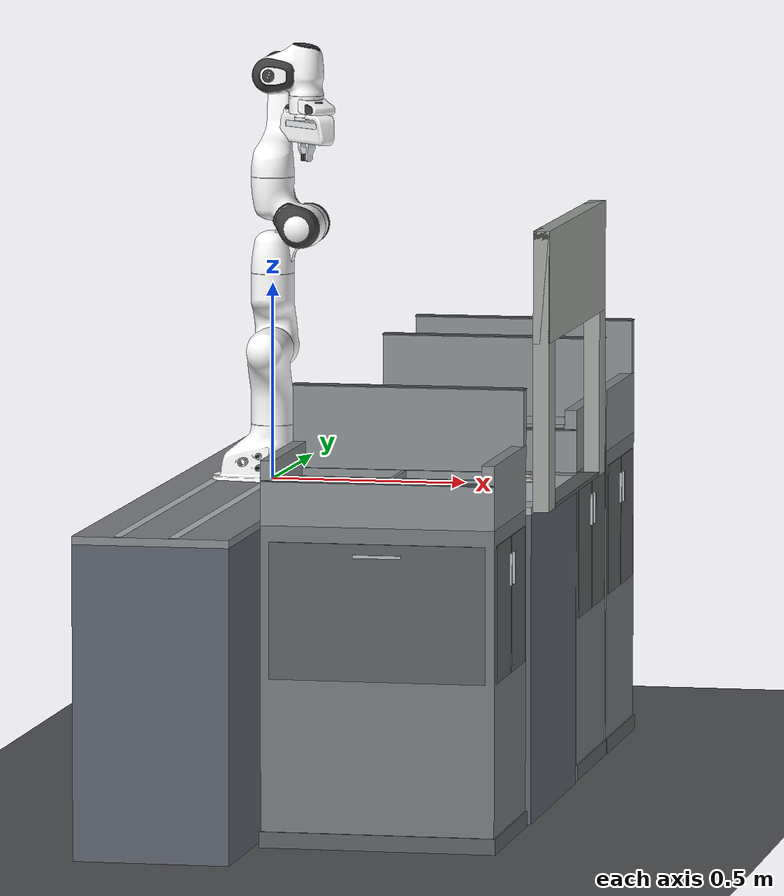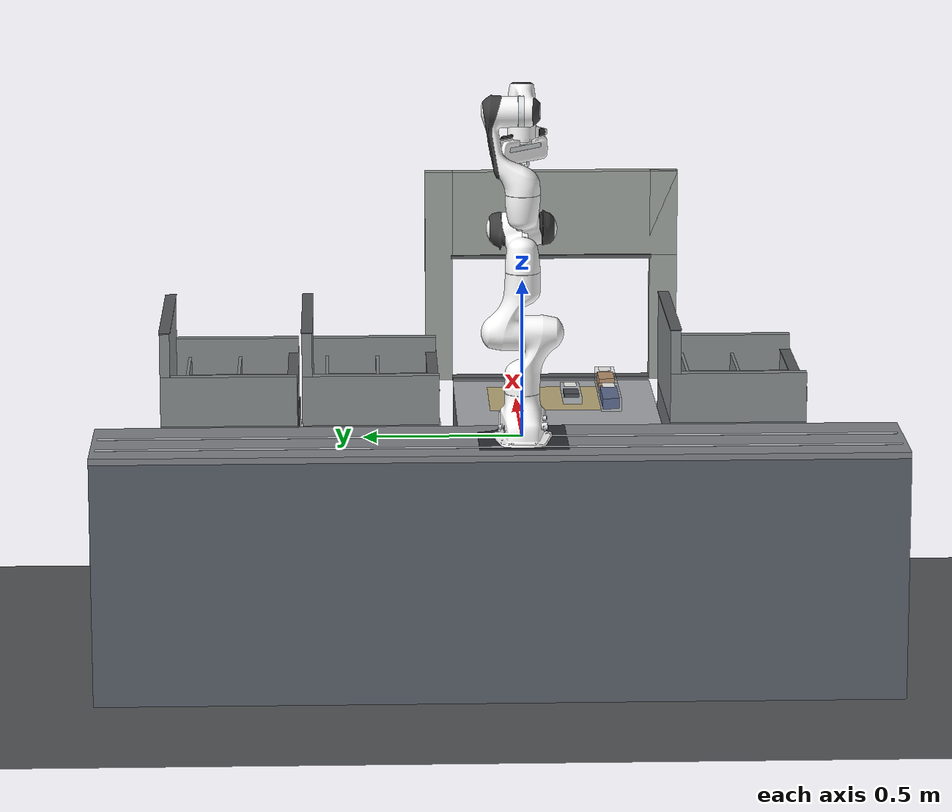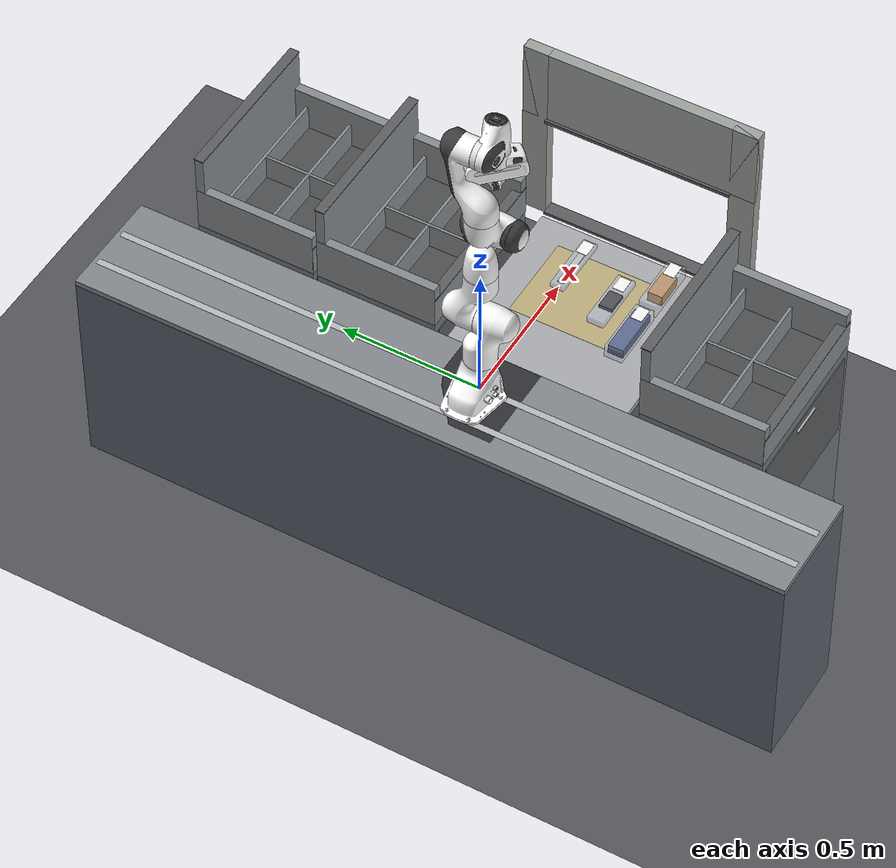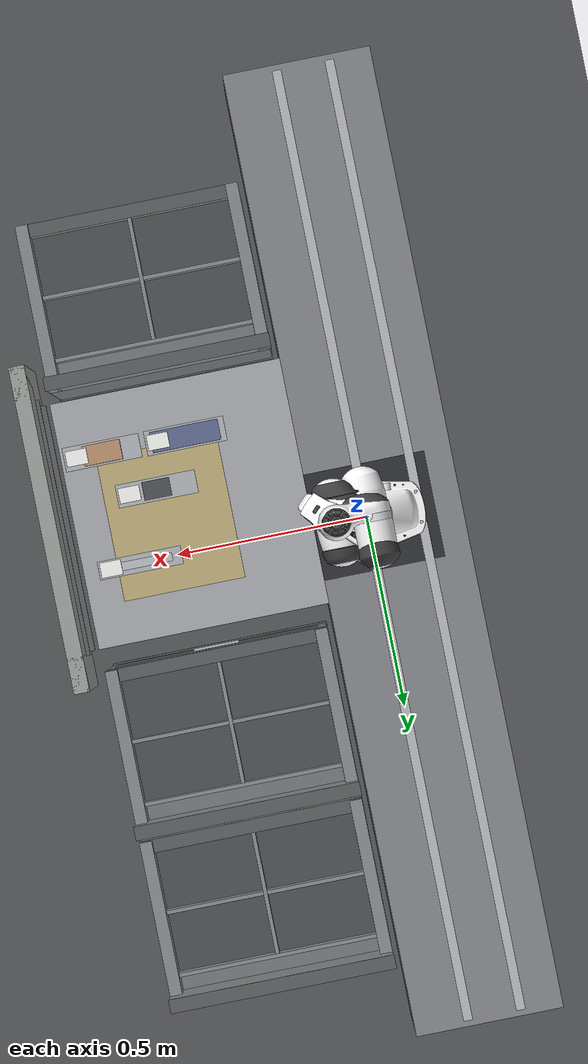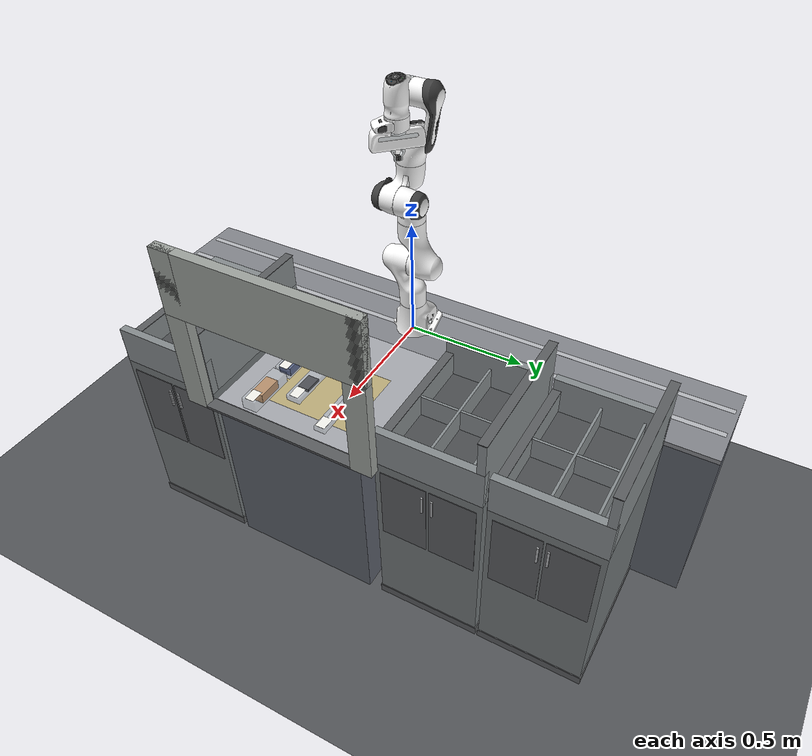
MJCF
<mujoco model="evidence_intake">
  <include file="panda_railed.xml"/>

  <option timestep="0.002" integrator="implicitfast" cone="elliptic" impratio="10"/>

  <statistic center="0.3 0.1 0.1" extent="1.2"/>

  <visual>
    <headlight diffuse="0.3 0.3 0.3" ambient="0.18 0.18 0.18" specular="0 0 0"/>
    <rgba haze="0.15 0.25 0.35 1"/>
    <global azimuth="150" elevation="-25" offwidth="4800" offheight="4000"/>
    <quality shadowsize="4096"/>
  </visual>

  <asset>
    <texture type="skybox" builtin="gradient" rgb1="0.35 0.40 0.47" rgb2="0.08 0.09 0.11" width="512" height="3072"/>
    <material name="floor_mat" rgba="0.33 0.34 0.35 1" specular="0" shininess="0" reflectance="0"/>
    <material name="counter_body" rgba="0.36 0.38 0.42 1"/>
    <material name="counter_top" rgba="0.66 0.67 0.69 1" specular="0.2"/>
    <material name="intake_mat" rgba="0.95 0.75 0.15 1"/>
    <!-- Opaque institutional grey, low specularity: reads as a steel evidence locker. -->
    <material name="cabinet_body" rgba="0.45 0.47 0.48 1" specular="0.12" shininess="0.2"/>
    <material name="cabinet_panel" rgba="0.53 0.55 0.56 1" specular="0.12" shininess="0.2"/>
    <material name="cabinet_trim" rgba="0.36 0.37 0.38 1" specular="0.1" shininess="0.2"/>
    <material name="cabinet_handle" rgba="0.70 0.71 0.72 1" specular="0.5" shininess="0.6"/>
    <material name="slot_floor" rgba="0.30 0.31 0.32 1" specular="0.05"/>
    <material name="rail_top" rgba="0.52 0.53 0.55 1" specular="0.1"/>
    <material name="rail_steel" rgba="0.72 0.73 0.75 1" specular="0.7" shininess="0.8"/>
    <material name="wall" rgba="0.62 0.64 0.62 1" specular="0.02"/>
    <!-- Sealed evidence bags: translucent polythene outer, visible contents, white barcode label. -->
    <material name="bag_poly" rgba="0.80 0.83 0.86 0.32" specular="0.6" shininess="0.8"/>
    <material name="label_blank" rgba="0.97 0.97 0.95 1" specular="0.05"/>
    <!-- Barcode label pool (scripts/labels.py). One label material is assigned per episode via geom_matid. -->
    <texture name="label_00_tex" type="2d" file="labels/label_00.png"/>
    <material name="label_00" texture="label_00_tex" specular="0.05"/>
    <texture name="label_01_tex" type="2d" file="labels/label_01.png"/>
    <material name="label_01" texture="label_01_tex" specular="0.05"/>
    <texture name="label_02_tex" type="2d" file="labels/label_02.png"/>
    <material name="label_02" texture="label_02_tex" specular="0.05"/>
    <texture name="label_03_tex" type="2d" file="labels/label_03.png"/>
    <material name="label_03" texture="label_03_tex" specular="0.05"/>
    <texture name="label_04_tex" type="2d" file="labels/label_04.png"/>
    <material name="label_04" texture="label_04_tex" specular="0.05"/>
    <texture name="label_05_tex" type="2d" file="labels/label_05.png"/>
    <material name="label_05" texture="label_05_tex" specular="0.05"/>
    <texture name="label_06_tex" type="2d" file="labels/label_06.png"/>
    <material name="label_06" texture="label_06_tex" specular="0.05"/>
    <texture name="label_07_tex" type="2d" file="labels/label_07.png"/>
    <material name="label_07" texture="label_07_tex" specular="0.05"/>
    <texture name="label_08_tex" type="2d" file="labels/label_08.png"/>
    <material name="label_08" texture="label_08_tex" specular="0.05"/>
    <texture name="label_09_tex" type="2d" file="labels/label_09.png"/>
    <material name="label_09" texture="label_09_tex" specular="0.05"/>
    <texture name="label_10_tex" type="2d" file="labels/label_10.png"/>
    <material name="label_10" texture="label_10_tex" specular="0.05"/>
    <texture name="label_11_tex" type="2d" file="labels/label_11.png"/>
    <material name="label_11" texture="label_11_tex" specular="0.05"/>
    <texture name="label_12_tex" type="2d" file="labels/label_12.png"/>
    <material name="label_12" texture="label_12_tex" specular="0.05"/>
    <texture name="label_13_tex" type="2d" file="labels/label_13.png"/>
    <material name="label_13" texture="label_13_tex" specular="0.05"/>
    <texture name="label_14_tex" type="2d" file="labels/label_14.png"/>
    <material name="label_14" texture="label_14_tex" specular="0.05"/>
    <texture name="label_15_tex" type="2d" file="labels/label_15.png"/>
    <material name="label_15" texture="label_15_tex" specular="0.05"/>
    <texture name="label_16_tex" type="2d" file="labels/label_16.png"/>
    <material name="label_16" texture="label_16_tex" specular="0.05"/>
    <texture name="label_17_tex" type="2d" file="labels/label_17.png"/>
    <material name="label_17" texture="label_17_tex" specular="0.05"/>
    <texture name="label_18_tex" type="2d" file="labels/label_18.png"/>
    <material name="label_18" texture="label_18_tex" specular="0.05"/>
    <texture name="label_19_tex" type="2d" file="labels/label_19.png"/>
    <material name="label_19" texture="label_19_tex" specular="0.05"/>
    <texture name="label_20_tex" type="2d" file="labels/label_20.png"/>
    <material name="label_20" texture="label_20_tex" specular="0.05"/>
    <texture name="label_21_tex" type="2d" file="labels/label_21.png"/>
    <material name="label_21" texture="label_21_tex" specular="0.05"/>
    <texture name="label_22_tex" type="2d" file="labels/label_22.png"/>
    <material name="label_22" texture="label_22_tex" specular="0.05"/>
    <texture name="label_23_tex" type="2d" file="labels/label_23.png"/>
    <material name="label_23" texture="label_23_tex" specular="0.05"/>
    <texture name="label_unregistered_tex" type="2d" file="labels/label_unregistered.png"/>
    <material name="label_unregistered" texture="label_unregistered_tex" specular="0.05"/>
    <texture name="label_damaged_tex" type="2d" file="labels/label_damaged.png"/>
    <material name="label_damaged" texture="label_damaged_tex" specular="0.05"/>
    <material name="contents_phone" rgba="0.10 0.10 0.12 1" specular="0.6" shininess="0.7"/>
    <material name="contents_blade" rgba="0.72 0.74 0.77 1" specular="0.9" shininess="0.9"/>
    <material name="contents_garment" rgba="0.20 0.26 0.46 1" specular="0.05"/>
    <material name="contents_carton" rgba="0.72 0.48 0.26 1" specular="0.1"/>
  </asset>

  <default>
    <default class="static">
      <geom type="box" contype="1" conaffinity="1" condim="3" friction="0.8 0.005 0.0001"/>
    </default>
    <default class="item">
      <geom condim="4" priority="1" friction="1.2 0.02 0.0001" solref="0.004 1" solimp="0.95 0.99 0.001"/>
    </default>
    <default class="slot">
      <site type="box" group="4" rgba="0.2 0.9 0.4 0.15"/>
    </default>
    <!-- Cabinet collision walls: unchanged physics, hidden (group 3, like Menagerie's collision meshes). -->
    <default class="cab_collision">
      <geom type="box" contype="1" conaffinity="1" condim="3" friction="0.8 0.005 0.0001" group="3"/>
    </default>
    <!-- Visual-only geometry: never collides, adds no mass or inertia. -->
    <default class="visual_only">
      <geom type="box" contype="0" conaffinity="0" density="0" group="0"/>
    </default>
  </default>

  <worldbody>
    <light name="key" pos="1.2 -1.0 2.2" dir="-0.45 0.35 -0.8" directional="true" castshadow="true"
      diffuse="0.55 0.55 0.52"/>
    <light name="fill" pos="-1.0 1.0 2.0" dir="0.4 -0.4 -0.8" directional="true" castshadow="false"
      diffuse="0.25 0.27 0.30"/>

    <geom name="floor" type="plane" pos="0 0 -0.8" size="0 0 0.05" material="floor_mat"/>

    <!-- Rail platform: the Panda's carriage rides along it (world y). Top at z = 0 like the counter. -->
    <body name="rail_platform" pos="-0.055 0.075 0">
      <geom name="platform_body" class="static" pos="0 0 -0.41" size="0.195 1.275 0.39" material="counter_body"/>
      <geom name="platform_top" class="static" pos="0 0 -0.01" size="0.195 1.275 0.01" material="rail_top"/>
      <geom name="rail_beam_l" class="visual_only" pos="0.055 0 -0.0005" size="0.012 1.26 0.0006" material="rail_steel"/>
      <geom name="rail_beam_r" class="visual_only" pos="-0.085 0 -0.0005" size="0.012 1.26 0.0006" material="rail_steel"/>
    </body>

    <body name="counter" pos="0.445 -0.125 0">
      <geom name="counter_body" class="static" pos="0 0 -0.41" size="0.305 0.325 0.39" material="counter_body"/>
      <geom name="counter_top" class="static" pos="0 0 -0.01" size="0.305 0.325 0.01" material="counter_top"/>
      <!-- Visual-only intake zone marking (no collision), at the same world position as in Phase 0. -->
      <geom name="intake_zone" type="box" pos="0.055 0.025 0.0004" size="0.16 0.19 0.0004"
        contype="0" conaffinity="0" material="intake_mat" rgba="0.95 0.75 0.15 0.35"/>
    </body>
    <!-- The wall between the public side and the evidence room, with the intake hatch opening above the counter. -->
    <body name="hatch_wall" pos="0.79 -0.125 0">
      <geom name="hatch_left" class="visual_only" pos="0 -0.37 0.35" size="0.02 0.045 0.35" material="wall"/>
      <geom name="hatch_right" class="visual_only" pos="0 0.37 0.35" size="0.02 0.045 0.35" material="wall"/>
      <geom name="hatch_top" class="visual_only" pos="0 0 0.56" size="0.02 0.415 0.14" material="wall"/>
      <geom name="hatch_sill" class="visual_only" pos="-0.005 0 0.005" size="0.025 0.325 0.005" material="cabinet_trim"/>
      <geom name="hatch_frame_top" class="visual_only" pos="-0.024 0 0.417" size="0.006 0.33 0.006" material="cabinet_trim"/>
    </body>

    <!-- CAB-A: narcotics -->
    <body name="cab_a" pos="0.45 -0.72 0">
      <geom name="a_cab_base" class="static" pos="0 0.025 -0.4" size="0.27 0.195 0.4" material="cabinet_body"/>
      <geom name="a_cab_floor" class="static" pos="0 0 0.004" size="0.26 0.16 0.004" material="slot_floor"/>
      <geom name="a_cab_back" class="static" pos="0 0.165 0.05" size="0.27 0.005 0.05" material="cabinet_panel"/>
      <!-- Tall backboard, set back from the bins so the 0.21 m-wide Panda hand clears it over the rear slots. -->
      <geom name="a_cab_backboard" class="cab_collision" pos="0 0.215 0.15" size="0.27 0.005 0.15"/>
      <geom name="a_cab_front" class="cab_collision" pos="0 -0.165 0.05" size="0.27 0.005 0.05"/>
      <geom name="a_cab_side_l" class="cab_collision" pos="-0.265 0 0.05" size="0.005 0.16 0.05"/>
      <geom name="a_cab_side_r" class="cab_collision" pos="0.265 0 0.05" size="0.005 0.16 0.05"/>
      <geom name="a_cab_divider" class="static" pos="0 0 0.05" size="0.005 0.16 0.05" material="cabinet_panel"/>
      <geom name="a_cab_shelf" class="static" pos="0 0 0.05" size="0.26 0.005 0.05" material="cabinet_panel"/>

      <!-- Visual locker shell. Inner faces sit on the collision walls' inner faces, so bin interiors look unchanged. -->
      <geom name="a_vis_carcass" class="visual_only" pos="0 0.025 -0.4" size="0.292 0.217 0.4" material="cabinet_body"/>
      <geom name="a_vis_front" class="visual_only" pos="0 -0.1765 0.054" size="0.292 0.0165 0.054"
        material="cabinet_panel"/>
      <geom name="a_vis_front_cap" class="visual_only" pos="0 -0.1765 0.1095" size="0.292 0.0175 0.0015"
        material="cabinet_trim"/>
      <geom name="a_vis_side_l" class="visual_only" pos="-0.276 0.025 0.08" size="0.0161 0.217 0.08"
        material="cabinet_panel"/>
      <geom name="a_vis_side_r" class="visual_only" pos="0.276 0.025 0.08" size="0.0161 0.217 0.08"
        material="cabinet_panel"/>
      <geom name="a_vis_backboard" class="visual_only" pos="0 0.226 0.15" size="0.292 0.016 0.15"
        material="cabinet_panel"/>
      <geom name="a_vis_backboard_cap" class="visual_only" pos="0 0.226 0.3015" size="0.294 0.018 0.0015"
        material="cabinet_trim"/>
      <!-- Locker doors on the two faces the demo camera sees (+x side, -y front), with pull handles. -->
      <geom name="a_vis_door_x1" class="visual_only" pos="0.2925 -0.075 -0.21" size="0.002 0.095 0.17"
        material="cabinet_trim"/>
      <geom name="a_vis_door_x2" class="visual_only" pos="0.2925 0.125 -0.21" size="0.002 0.095 0.17"
        material="cabinet_trim"/>
      <geom name="a_vis_handle_x1" class="visual_only" pos="0.297 0.005 -0.12" size="0.004 0.004 0.04"
        material="cabinet_handle"/>
      <geom name="a_vis_handle_x2" class="visual_only" pos="0.297 0.045 -0.12" size="0.004 0.004 0.04"
        material="cabinet_handle"/>
      <geom name="a_vis_door_y" class="visual_only" pos="0 -0.1935 -0.21" size="0.27 0.002 0.17"
        material="cabinet_trim"/>
      <geom name="a_vis_handle_y" class="visual_only" pos="0 -0.198 -0.07" size="0.06 0.004 0.004"
        material="cabinet_handle"/>
      <geom name="a_vis_plinth" class="visual_only" pos="0 0.025 -0.78" size="0.296 0.221 0.02"
        material="cabinet_trim"/>

      <site name="cab_a_slot_0" class="slot" pos="-0.1325 -0.0825 0.058" size="0.1225 0.0725 0.05"/>
      <site name="cab_a_slot_1" class="slot" pos="0.1325 -0.0825 0.058" size="0.1225 0.0725 0.05"/>
      <site name="cab_a_slot_2" class="slot" pos="-0.1325 0.0825 0.058" size="0.1225 0.0725 0.05"/>
      <site name="cab_a_slot_3" class="slot" pos="0.1325 0.0825 0.058" size="0.1225 0.0725 0.05"/>
    </body>

    <!-- CAB-B: weapons -->
    <body name="cab_b" pos="0.45 0.45 0">
      <geom name="b_cab_base" class="static" pos="0 0.025 -0.4" size="0.27 0.195 0.4" material="cabinet_body"/>
      <geom name="b_cab_floor" class="static" pos="0 0 0.004" size="0.26 0.16 0.004" material="slot_floor"/>
      <geom name="b_cab_back" class="static" pos="0 0.165 0.05" size="0.27 0.005 0.05" material="cabinet_panel"/>
      <!-- Tall backboard, set back from the bins so the 0.21 m-wide Panda hand clears it over the rear slots. -->
      <geom name="b_cab_backboard" class="cab_collision" pos="0 0.215 0.15" size="0.27 0.005 0.15"/>
      <geom name="b_cab_front" class="cab_collision" pos="0 -0.165 0.05" size="0.27 0.005 0.05"/>
      <geom name="b_cab_side_l" class="cab_collision" pos="-0.265 0 0.05" size="0.005 0.16 0.05"/>
      <geom name="b_cab_side_r" class="cab_collision" pos="0.265 0 0.05" size="0.005 0.16 0.05"/>
      <geom name="b_cab_divider" class="static" pos="0 0 0.05" size="0.005 0.16 0.05" material="cabinet_panel"/>
      <geom name="b_cab_shelf" class="static" pos="0 0 0.05" size="0.26 0.005 0.05" material="cabinet_panel"/>

      <!-- Visual locker shell. Inner faces sit on the collision walls' inner faces, so bin interiors look unchanged. -->
      <geom name="b_vis_carcass" class="visual_only" pos="0 0.025 -0.4" size="0.292 0.217 0.4" material="cabinet_body"/>
      <geom name="b_vis_front" class="visual_only" pos="0 -0.1765 0.054" size="0.292 0.0165 0.054"
        material="cabinet_panel"/>
      <geom name="b_vis_front_cap" class="visual_only" pos="0 -0.1765 0.1095" size="0.292 0.0175 0.0015"
        material="cabinet_trim"/>
      <geom name="b_vis_side_l" class="visual_only" pos="-0.276 0.025 0.08" size="0.0161 0.217 0.08"
        material="cabinet_panel"/>
      <geom name="b_vis_side_r" class="visual_only" pos="0.276 0.025 0.08" size="0.0161 0.217 0.08"
        material="cabinet_panel"/>
      <geom name="b_vis_backboard" class="visual_only" pos="0 0.226 0.15" size="0.292 0.016 0.15"
        material="cabinet_panel"/>
      <geom name="b_vis_backboard_cap" class="visual_only" pos="0 0.226 0.3015" size="0.294 0.018 0.0015"
        material="cabinet_trim"/>
      <!-- Locker doors on the two faces the demo camera sees (+x side, -y front), with pull handles. -->
      <geom name="b_vis_door_x1" class="visual_only" pos="0.2925 -0.075 -0.21" size="0.002 0.095 0.17"
        material="cabinet_trim"/>
      <geom name="b_vis_door_x2" class="visual_only" pos="0.2925 0.125 -0.21" size="0.002 0.095 0.17"
        material="cabinet_trim"/>
      <geom name="b_vis_handle_x1" class="visual_only" pos="0.297 0.005 -0.12" size="0.004 0.004 0.04"
        material="cabinet_handle"/>
      <geom name="b_vis_handle_x2" class="visual_only" pos="0.297 0.045 -0.12" size="0.004 0.004 0.04"
        material="cabinet_handle"/>
      <geom name="b_vis_door_y" class="visual_only" pos="0 -0.1935 -0.21" size="0.27 0.002 0.17"
        material="cabinet_trim"/>
      <geom name="b_vis_handle_y" class="visual_only" pos="0 -0.198 -0.07" size="0.06 0.004 0.004"
        material="cabinet_handle"/>
      <geom name="b_vis_plinth" class="visual_only" pos="0 0.025 -0.78" size="0.296 0.221 0.02"
        material="cabinet_trim"/>

      <site name="cab_b_slot_0" class="slot" pos="-0.1325 -0.0825 0.058" size="0.1225 0.0725 0.05"/>
      <site name="cab_b_slot_1" class="slot" pos="0.1325 -0.0825 0.058" size="0.1225 0.0725 0.05"/>
      <site name="cab_b_slot_2" class="slot" pos="-0.1325 0.0825 0.058" size="0.1225 0.0725 0.05"/>
      <site name="cab_b_slot_3" class="slot" pos="0.1325 0.0825 0.058" size="0.1225 0.0725 0.05"/>
    </body>

    <!-- CAB-C: general -->
    <body name="cab_c" pos="0.45 0.9 0">
      <geom name="c_cab_base" class="static" pos="0 0.025 -0.4" size="0.27 0.195 0.4" material="cabinet_body"/>
      <geom name="c_cab_floor" class="static" pos="0 0 0.004" size="0.26 0.16 0.004" material="slot_floor"/>
      <geom name="c_cab_back" class="static" pos="0 0.165 0.05" size="0.27 0.005 0.05" material="cabinet_panel"/>
      <!-- Tall backboard, set back from the bins so the 0.21 m-wide Panda hand clears it over the rear slots. -->
      <geom name="c_cab_backboard" class="cab_collision" pos="0 0.215 0.15" size="0.27 0.005 0.15"/>
      <geom name="c_cab_front" class="cab_collision" pos="0 -0.165 0.05" size="0.27 0.005 0.05"/>
      <geom name="c_cab_side_l" class="cab_collision" pos="-0.265 0 0.05" size="0.005 0.16 0.05"/>
      <geom name="c_cab_side_r" class="cab_collision" pos="0.265 0 0.05" size="0.005 0.16 0.05"/>
      <geom name="c_cab_divider" class="static" pos="0 0 0.05" size="0.005 0.16 0.05" material="cabinet_panel"/>
      <geom name="c_cab_shelf" class="static" pos="0 0 0.05" size="0.26 0.005 0.05" material="cabinet_panel"/>

      <!-- Visual locker shell. Inner faces sit on the collision walls' inner faces, so bin interiors look unchanged. -->
      <geom name="c_vis_carcass" class="visual_only" pos="0 0.025 -0.4" size="0.292 0.217 0.4" material="cabinet_body"/>
      <geom name="c_vis_front" class="visual_only" pos="0 -0.1765 0.054" size="0.292 0.0165 0.054"
        material="cabinet_panel"/>
      <geom name="c_vis_front_cap" class="visual_only" pos="0 -0.1765 0.1095" size="0.292 0.0175 0.0015"
        material="cabinet_trim"/>
      <geom name="c_vis_side_l" class="visual_only" pos="-0.276 0.025 0.08" size="0.0161 0.217 0.08"
        material="cabinet_panel"/>
      <geom name="c_vis_side_r" class="visual_only" pos="0.276 0.025 0.08" size="0.0161 0.217 0.08"
        material="cabinet_panel"/>
      <geom name="c_vis_backboard" class="visual_only" pos="0 0.226 0.15" size="0.292 0.016 0.15"
        material="cabinet_panel"/>
      <geom name="c_vis_backboard_cap" class="visual_only" pos="0 0.226 0.3015" size="0.294 0.018 0.0015"
        material="cabinet_trim"/>
      <!-- Locker doors on the two faces the demo camera sees (+x side, -y front), with pull handles. -->
      <geom name="c_vis_door_x1" class="visual_only" pos="0.2925 -0.075 -0.21" size="0.002 0.095 0.17"
        material="cabinet_trim"/>
      <geom name="c_vis_door_x2" class="visual_only" pos="0.2925 0.125 -0.21" size="0.002 0.095 0.17"
        material="cabinet_trim"/>
      <geom name="c_vis_handle_x1" class="visual_only" pos="0.297 0.005 -0.12" size="0.004 0.004 0.04"
        material="cabinet_handle"/>
      <geom name="c_vis_handle_x2" class="visual_only" pos="0.297 0.045 -0.12" size="0.004 0.004 0.04"
        material="cabinet_handle"/>
      <geom name="c_vis_door_y" class="visual_only" pos="0 -0.1935 -0.21" size="0.27 0.002 0.17"
        material="cabinet_trim"/>
      <geom name="c_vis_handle_y" class="visual_only" pos="0 -0.198 -0.07" size="0.06 0.004 0.004"
        material="cabinet_handle"/>
      <geom name="c_vis_plinth" class="visual_only" pos="0 0.025 -0.78" size="0.296 0.221 0.02"
        material="cabinet_trim"/>

      <site name="cab_c_slot_0" class="slot" pos="-0.1325 -0.0825 0.058" size="0.1225 0.0725 0.05"/>
      <site name="cab_c_slot_1" class="slot" pos="0.1325 -0.0825 0.058" size="0.1225 0.0725 0.05"/>
      <site name="cab_c_slot_2" class="slot" pos="-0.1325 0.0825 0.058" size="0.1225 0.0725 0.05"/>
      <site name="cab_c_slot_3" class="slot" pos="0.1325 0.0825 0.058" size="0.1225 0.0725 0.05"/>
    </body>

    <body name="item_phone" pos="0.52 -0.18 0.012">
      <freejoint name="item_phone_joint"/>
      <geom name="item_phone_geom" class="item" type="box" size="0.105 0.030 0.012" mass="0.25" material="bag_poly"/>
      <geom name="item_phone_contents" class="visual_only" size="0.036 0.024 0.006" material="contents_phone"/>
      <geom name="item_phone_label" class="visual_only" pos="0.072 0 0.0126" size="0.028 0.020 0.0006"
        material="label_blank"/>
    </body>
    <body name="item_blade" pos="0.60 0.00 0.010">
      <freejoint name="item_blade_joint"/>
      <geom name="item_blade_geom" class="item" type="box" size="0.110 0.024 0.010" mass="0.2" material="bag_poly"/>
      <geom name="item_blade_contents" class="visual_only" size="0.085 0.011 0.003" material="contents_blade"/>
      <geom name="item_blade_label" class="visual_only" pos="0.077 0 0.0106" size="0.028 0.020 0.0006"
        material="label_blank"/>
    </body>
    <body name="item_garment" pos="0.42 -0.30 0.022">
      <freejoint name="item_garment_joint"/>
      <geom name="item_garment_geom" class="item" type="box" size="0.105 0.032 0.022" mass="0.25" material="bag_poly"/>
      <geom name="item_garment_contents" class="visual_only" size="0.090 0.027 0.017" material="contents_garment"/>
      <geom name="item_garment_label" class="visual_only" pos="0.072 0 0.0226" size="0.028 0.020 0.0006"
        material="label_blank"/>
    </body>
    <body name="item_carton" pos="0.64 -0.30 0.024">
      <freejoint name="item_carton_joint"/>
      <geom name="item_carton_geom" class="item" type="box" size="0.100 0.031 0.024" mass="0.4" material="bag_poly"/>
      <geom name="item_carton_contents" class="visual_only" size="0.050 0.026 0.019" material="contents_carton"/>
      <geom name="item_carton_label" class="visual_only" pos="0.067 0 0.0246" size="0.028 0.020 0.0006"
        material="label_blank"/>
    </body>

    <!-- Invisible look-at targets for the fixed cameras. -->
    <body name="demo_target" pos="0.30 0.10 0.22"/>

    <camera name="demo_cam" pos="1.75 -1.25 1.2" mode="targetbody" target="demo_target" fovy="42"/>
    <camera name="topdown_cam" pos="0.5 -0.12 1.9" xyaxes="0 -1 0 1 0 0" fovy="22"/>
    <camera name="cabinet_cam_a" pos="0.45 -0.90 0.85" xyaxes="1 0 0 0 0.94 0.34" fovy="40"/>
    <camera name="cabinet_cam_b" pos="0.45 0.27 0.85" xyaxes="1 0 0 0 0.94 0.34" fovy="40"/>
    <camera name="cabinet_cam_c" pos="0.45 0.72 0.85" xyaxes="1 0 0 0 0.94 0.34" fovy="40"/>
    <camera name="scanner_cam" pos="0.50 -0.10 0.70" xyaxes="0 -1 0 1 0 0" fovy="34.9"/>
  </worldbody>

  <contact>
    <!-- The carriage rides the rail on linear bearings; the robot base casting must not drag on the platform. -->
    <exclude body1="rail_platform" body2="link0"/>
    <exclude body1="rail_platform" body2="rail_carriage"/>
  </contact>
</mujoco>

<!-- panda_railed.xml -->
<mujoco model="panda_railed">
  <compiler angle="radian" meshdir="assets" autolimits="true"/>

  <option integrator="implicitfast"/>

  <default>
    <default class="panda">
      <material specular="0.5" shininess="0.25"/>
      <joint armature="0.1" damping="1" axis="0 0 1" range="-2.8973 2.8973"/>
      <general dyntype="none" biastype="affine" ctrlrange="-2.8973 2.8973" forcerange="-87 87"/>
      <default class="finger">
        <joint axis="0 1 0" type="slide" range="0 0.04"/>
      </default>

      <default class="visual">
        <geom type="mesh" contype="0" conaffinity="0" group="2"/>
      </default>
      <default class="collision">
        <geom type="mesh" group="3"/>
        <default class="fingertip_pad_collision_1">
          <geom type="box" size="0.0085 0.004 0.0085" pos="0 0.0055 0.0445"/>
        </default>
        <default class="fingertip_pad_collision_2">
          <geom type="box" size="0.003 0.002 0.003" pos="0.0055 0.002 0.05"/>
        </default>
        <default class="fingertip_pad_collision_3">
          <geom type="box" size="0.003 0.002 0.003" pos="-0.0055 0.002 0.05"/>
        </default>
        <default class="fingertip_pad_collision_4">
          <geom type="box" size="0.003 0.002 0.0035" pos="0.0055 0.002 0.0395"/>
        </default>
        <default class="fingertip_pad_collision_5">
          <geom type="box" size="0.003 0.002 0.0035" pos="-0.0055 0.002 0.0395"/>
        </default>
      </default>
    </default>
  </default>

  <asset>
    <material class="panda" name="white" rgba="1 1 1 1"/>
    <material class="panda" name="off_white" rgba="0.901961 0.921569 0.929412 1"/>
    <material class="panda" name="black" rgba="0.25 0.25 0.25 1"/>
    <material class="panda" name="green" rgba="0 1 0 1"/>
    <material class="panda" name="light_blue" rgba="0.039216 0.541176 0.780392 1"/>

    <!-- Collision meshes -->
    <mesh name="link0_c" file="link0.stl"/>
    <mesh name="link1_c" file="link1.stl"/>
    <mesh name="link2_c" file="link2.stl"/>
    <mesh name="link3_c" file="link3.stl"/>
    <mesh name="link4_c" file="link4.stl"/>
    <mesh name="link5_c0" file="link5_collision_0.obj"/>
    <mesh name="link5_c1" file="link5_collision_1.obj"/>
    <mesh name="link5_c2" file="link5_collision_2.obj"/>
    <mesh name="link6_c" file="link6.stl"/>
    <mesh name="link7_c" file="link7.stl"/>
    <mesh name="hand_c" file="hand.stl"/>

    <!-- Visual meshes -->
    <mesh file="link0_0.obj"/>
    <mesh file="link0_1.obj"/>
    <mesh file="link0_2.obj"/>
    <mesh file="link0_3.obj"/>
    <mesh file="link0_4.obj"/>
    <mesh file="link0_5.obj"/>
    <mesh file="link0_7.obj"/>
    <mesh file="link0_8.obj"/>
    <mesh file="link0_9.obj"/>
    <mesh file="link0_10.obj"/>
    <mesh file="link0_11.obj"/>
    <mesh file="link1.obj"/>
    <mesh file="link2.obj"/>
    <mesh file="link3_0.obj"/>
    <mesh file="link3_1.obj"/>
    <mesh file="link3_2.obj"/>
    <mesh file="link3_3.obj"/>
    <mesh file="link4_0.obj"/>
    <mesh file="link4_1.obj"/>
    <mesh file="link4_2.obj"/>
    <mesh file="link4_3.obj"/>
    <mesh file="link5_0.obj"/>
    <mesh file="link5_1.obj"/>
    <mesh file="link5_2.obj"/>
    <mesh file="link6_0.obj"/>
    <mesh file="link6_1.obj"/>
    <mesh file="link6_2.obj"/>
    <mesh file="link6_3.obj"/>
    <mesh file="link6_4.obj"/>
    <mesh file="link6_5.obj"/>
    <mesh file="link6_6.obj"/>
    <mesh file="link6_7.obj"/>
    <mesh file="link6_8.obj"/>
    <mesh file="link6_9.obj"/>
    <mesh file="link6_10.obj"/>
    <mesh file="link6_11.obj"/>
    <mesh file="link6_12.obj"/>
    <mesh file="link6_13.obj"/>
    <mesh file="link6_14.obj"/>
    <mesh file="link6_15.obj"/>
    <mesh file="link6_16.obj"/>
    <mesh file="link7_0.obj"/>
    <mesh file="link7_1.obj"/>
    <mesh file="link7_2.obj"/>
    <mesh file="link7_3.obj"/>
    <mesh file="link7_4.obj"/>
    <mesh file="link7_5.obj"/>
    <mesh file="link7_6.obj"/>
    <mesh file="link7_7.obj"/>
    <mesh file="hand_0.obj"/>
    <mesh file="hand_1.obj"/>
    <mesh file="hand_2.obj"/>
    <mesh file="hand_3.obj"/>
    <mesh file="hand_4.obj"/>
    <mesh file="finger_0.obj"/>
    <mesh file="finger_1.obj"/>
  </asset>

  <worldbody>
    <light name="top" pos="0 0 2" mode="trackcom"/>
    <body name="rail_carriage" pos="0 0 0">
      <joint name="rail" type="slide" axis="0 1 0" range="-0.95 0.95" damping="400" armature="5"/>
      <inertial mass="25" pos="0 0 -0.03" diaginertia="0.6 0.6 0.9"/>
      <geom name="carriage_plate" type="box" pos="-0.02 0 -0.012" size="0.16 0.14 0.012" contype="0" conaffinity="0"
        density="0" rgba="0.18 0.19 0.21 1"/>
      <body name="link0" childclass="panda">
        <inertial mass="0.629769" pos="-0.041018 -0.00014 0.049974"
          fullinertia="0.00315 0.00388 0.004285 8.2904e-7 0.00015 8.2299e-6"/>
        <geom mesh="link0_0" material="off_white" class="visual"/>
        <geom mesh="link0_1" material="black" class="visual"/>
        <geom mesh="link0_2" material="off_white" class="visual"/>
        <geom mesh="link0_3" material="black" class="visual"/>
        <geom mesh="link0_4" material="off_white" class="visual"/>
        <geom mesh="link0_5" material="black" class="visual"/>
        <geom mesh="link0_7" material="white" class="visual"/>
        <geom mesh="link0_8" material="white" class="visual"/>
        <geom mesh="link0_9" material="black" class="visual"/>
        <geom mesh="link0_10" material="off_white" class="visual"/>
        <geom mesh="link0_11" material="white" class="visual"/>
        <geom mesh="link0_c" class="collision"/>
        <body name="link1" pos="0 0 0.333">
          <inertial mass="4.970684" pos="0.003875 0.002081 -0.04762"
            fullinertia="0.70337 0.70661 0.0091170 -0.00013900 0.0067720 0.019169"/>
          <joint name="joint1"/>
          <geom material="white" mesh="link1" class="visual"/>
          <geom mesh="link1_c" class="collision"/>
          <body name="link2" quat="1 -1 0 0">
            <inertial mass="0.646926" pos="-0.003141 -0.02872 0.003495"
              fullinertia="0.0079620 2.8110e-2 2.5995e-2 -3.925e-3 1.0254e-2 7.04e-4"/>
            <joint name="joint2" range="-1.7628 1.7628"/>
            <geom material="white" mesh="link2" class="visual"/>
            <geom mesh="link2_c" class="collision"/>
            <body name="link3" pos="0 -0.316 0" quat="1 1 0 0">
              <joint name="joint3"/>
              <inertial mass="3.228604" pos="2.7518e-2 3.9252e-2 -6.6502e-2"
                fullinertia="3.7242e-2 3.6155e-2 1.083e-2 -4.761e-3 -1.1396e-2 -1.2805e-2"/>
              <geom mesh="link3_0" material="white" class="visual"/>
              <geom mesh="link3_1" material="white" class="visual"/>
              <geom mesh="link3_2" material="white" class="visual"/>
              <geom mesh="link3_3" material="black" class="visual"/>
              <geom mesh="link3_c" class="collision"/>
              <body name="link4" pos="0.0825 0 0" quat="1 1 0 0">
                <inertial mass="3.587895" pos="-5.317e-2 1.04419e-1 2.7454e-2"
                  fullinertia="2.5853e-2 1.9552e-2 2.8323e-2 7.796e-3 -1.332e-3 8.641e-3"/>
                <joint name="joint4" range="-3.0718 -0.0698"/>
                <geom mesh="link4_0" material="white" class="visual"/>
                <geom mesh="link4_1" material="white" class="visual"/>
                <geom mesh="link4_2" material="black" class="visual"/>
                <geom mesh="link4_3" material="white" class="visual"/>
                <geom mesh="link4_c" class="collision"/>
                <body name="link5" pos="-0.0825 0.384 0" quat="1 -1 0 0">
                  <inertial mass="1.225946" pos="-1.1953e-2 4.1065e-2 -3.8437e-2"
                    fullinertia="3.5549e-2 2.9474e-2 8.627e-3 -2.117e-3 -4.037e-3 2.29e-4"/>
                  <joint name="joint5"/>
                  <geom mesh="link5_0" material="black" class="visual"/>
                  <geom mesh="link5_1" material="white" class="visual"/>
                  <geom mesh="link5_2" material="white" class="visual"/>
                  <geom mesh="link5_c0" class="collision"/>
                  <geom mesh="link5_c1" class="collision"/>
                  <geom mesh="link5_c2" class="collision"/>
                  <body name="link6" quat="1 1 0 0">
                    <inertial mass="1.666555" pos="6.0149e-2 -1.4117e-2 -1.0517e-2"
                      fullinertia="1.964e-3 4.354e-3 5.433e-3 1.09e-4 -1.158e-3 3.41e-4"/>
                    <joint name="joint6" range="-0.0175 3.7525"/>
                    <geom mesh="link6_0" material="off_white" class="visual"/>
                    <geom mesh="link6_1" material="white" class="visual"/>
                    <geom mesh="link6_2" material="black" class="visual"/>
                    <geom mesh="link6_3" material="white" class="visual"/>
                    <geom mesh="link6_4" material="white" class="visual"/>
                    <geom mesh="link6_5" material="white" class="visual"/>
                    <geom mesh="link6_6" material="white" class="visual"/>
                    <geom mesh="link6_7" material="light_blue" class="visual"/>
                    <geom mesh="link6_8" material="light_blue" class="visual"/>
                    <geom mesh="link6_9" material="black" class="visual"/>
                    <geom mesh="link6_10" material="black" class="visual"/>
                    <geom mesh="link6_11" material="white" class="visual"/>
                    <geom mesh="link6_12" material="green" class="visual"/>
                    <geom mesh="link6_13" material="white" class="visual"/>
                    <geom mesh="link6_14" material="black" class="visual"/>
                    <geom mesh="link6_15" material="black" class="visual"/>
                    <geom mesh="link6_16" material="white" class="visual"/>
                    <geom mesh="link6_c" class="collision"/>
                    <body name="link7" pos="0.088 0 0" quat="1 1 0 0">
                      <inertial mass="7.35522e-01" pos="1.0517e-2 -4.252e-3 6.1597e-2"
                        fullinertia="1.2516e-2 1.0027e-2 4.815e-3 -4.28e-4 -1.196e-3 -7.41e-4"/>
                      <joint name="joint7"/>
                      <geom mesh="link7_0" material="white" class="visual"/>
                      <geom mesh="link7_1" material="black" class="visual"/>
                      <geom mesh="link7_2" material="black" class="visual"/>
                      <geom mesh="link7_3" material="black" class="visual"/>
                      <geom mesh="link7_4" material="black" class="visual"/>
                      <geom mesh="link7_5" material="black" class="visual"/>
                      <geom mesh="link7_6" material="black" class="visual"/>
                      <geom mesh="link7_7" material="white" class="visual"/>
                      <geom mesh="link7_c" class="collision"/>
                      <body name="hand" pos="0 0 0.107" quat="0.9238795 0 0 -0.3826834">
                        <inertial mass="0.73" pos="-0.01 0 0.03" diaginertia="0.001 0.0025 0.0017"/>
                        <geom mesh="hand_0" material="off_white" class="visual"/>
                        <geom mesh="hand_1" material="black" class="visual"/>
                        <geom mesh="hand_2" material="black" class="visual"/>
                        <geom mesh="hand_3" material="white" class="visual"/>
                        <geom mesh="hand_4" material="off_white" class="visual"/>
                        <geom mesh="hand_c" class="collision"/>
                        <body name="left_finger" pos="0 0 0.0584">
                          <inertial mass="0.015" pos="0 0 0" diaginertia="2.375e-6 2.375e-6 7.5e-7"/>
                          <joint name="finger_joint1" class="finger"/>
                          <geom mesh="finger_0" material="off_white" class="visual"/>
                          <geom mesh="finger_1" material="black" class="visual"/>
                          <geom mesh="finger_0" class="collision"/>
                          <geom class="fingertip_pad_collision_1"/>
                          <geom class="fingertip_pad_collision_2"/>
                          <geom class="fingertip_pad_collision_3"/>
                          <geom class="fingertip_pad_collision_4"/>
                          <geom class="fingertip_pad_collision_5"/>
                        </body>
                        <body name="right_finger" pos="0 0 0.0584" quat="0 0 0 1">
                          <inertial mass="0.015" pos="0 0 0" diaginertia="2.375e-6 2.375e-6 7.5e-7"/>
                          <joint name="finger_joint2" class="finger"/>
                          <geom mesh="finger_0" material="off_white" class="visual"/>
                          <geom mesh="finger_1" material="black" class="visual"/>
                          <geom mesh="finger_0" class="collision"/>
                          <geom class="fingertip_pad_collision_1"/>
                          <geom class="fingertip_pad_collision_2"/>
                          <geom class="fingertip_pad_collision_3"/>
                          <geom class="fingertip_pad_collision_4"/>
                          <geom class="fingertip_pad_collision_5"/>
                        </body>
                      </body>
                    </body>
                  </body>
                </body>
              </body>
            </body>
          </body>
        </body>
      </body>
    </body>
  </worldbody>

  <tendon>
    <fixed name="split">
      <joint joint="finger_joint1" coef="0.5"/>
      <joint joint="finger_joint2" coef="0.5"/>
    </fixed>
  </tendon>

  <equality>
    <joint joint1="finger_joint1" joint2="finger_joint2" solimp="0.95 0.99 0.001" solref="0.005 1"/>
  </equality>

  <actuator>
    <general class="panda" name="actuator1" joint="joint1" gainprm="4500" biasprm="0 -4500 -450"/>
    <general class="panda" name="actuator2" joint="joint2" gainprm="4500" biasprm="0 -4500 -450"
      ctrlrange="-1.7628 1.7628"/>
    <general class="panda" name="actuator3" joint="joint3" gainprm="3500" biasprm="0 -3500 -350"/>
    <general class="panda" name="actuator4" joint="joint4" gainprm="3500" biasprm="0 -3500 -350"
      ctrlrange="-3.0718 -0.0698"/>
    <general class="panda" name="actuator5" joint="joint5" gainprm="2000" biasprm="0 -2000 -200" forcerange="-12 12"/>
    <general class="panda" name="actuator6" joint="joint6" gainprm="2000" biasprm="0 -2000 -200" forcerange="-12 12"
      ctrlrange="-0.0175 3.7525"/>
    <general class="panda" name="actuator7" joint="joint7" gainprm="2000" biasprm="0 -2000 -200" forcerange="-12 12"/>
    <!-- Remap original ctrlrange (0, 0.04) to (0, 255): 0.04 * 100 / 255 = 0.01568627451 -->
    <general class="panda" name="actuator8" tendon="split" forcerange="-100 100" ctrlrange="0 255"
      gainprm="0.01568627451 0 0" biasprm="0 -100 -10"/>
    <!-- Rail position servo. MuJoCo actuators have no velocity limit; the controller ramps the setpoint at a capped
         speed (TRAVERSE), and joint damping keeps the carriage well behaved. -->
    <position name="rail_actuator" joint="rail" kp="20000" ctrlrange="-0.95 0.95" forcerange="-600 600"/>
  </actuator>

  <keyframe>
    <key name="home" qpos="0 0 0 0 -1.57079 0 1.57079 -0.7853 0.04 0.04" ctrl="0 0 0 -1.57079 0 1.57079 -0.7853 255 0"/>
  </keyframe>

  <contact>
    <exclude body1="link0" body2="link1"/>
    <exclude body1="rail_carriage" body2="link0"/>
    <exclude body1="rail_carriage" body2="link1"/>
  </contact>
</mujoco>
